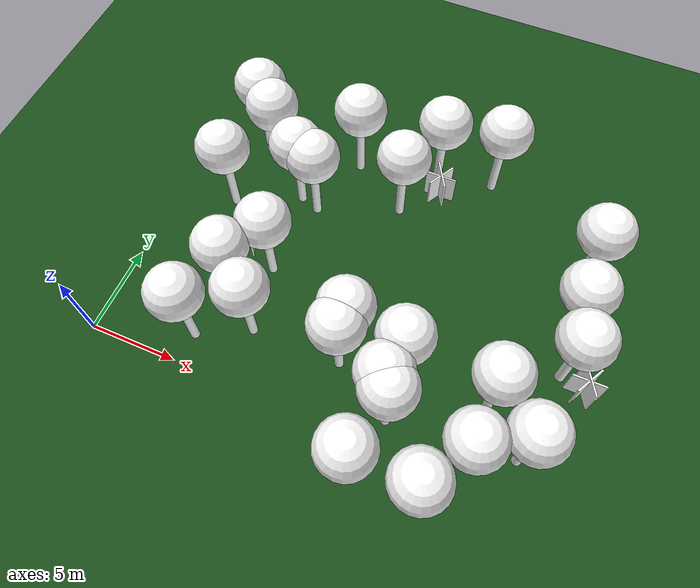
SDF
<sdf version="1.8">
 <world name="forest_world">
  <model name="fire_3">
   <pose>25.49 6.58 1.00 0 0 0.00</pose>
   <static>true</static>
   <link name="fire_link">
    <visual name="fire_3_fire_main_0">
     <geometry><box><size>1.80 0.10 2.00</size></box></geometry>
     <material>
      <ambient>0.7 0.35 0.0 1</ambient>
      <diffuse>1 1 1 1</diffuse>
      <specular>0 0 0 1</specular>
      <emissive>0 0 0 1</emissive>
      <pbr>
       <metal><albedo_map>textures/fire.png</albedo_map><metalness>0.0</metalness><roughness>0.6</roughness></metal>
      </pbr>
     </material>
     <transparency>0.0</transparency>
     <cast_shadows>false</cast_shadows>
    </visual>
    <visual name="fire_3_fire_60_1">
     <pose>0.00 0.00 0.10 0 0 1.05</pose>
     <geometry><box><size>1.80 0.10 2.00</size></box></geometry>
     <material>
      <ambient>0.7 0.35 0.0 1</ambient>
      <diffuse>1 1 1 1</diffuse>
      <specular>0 0 0 1</specular>
      <emissive>0 0 0 1</emissive>
      <pbr>
       <metal><albedo_map>textures/fire.png</albedo_map><metalness>0.0</metalness><roughness>0.6</roughness></metal>
      </pbr>
     </material>
     <transparency>0.0</transparency>
     <cast_shadows>false</cast_shadows>
    </visual>
    <visual name="fire_3_fire_120_2">
     <pose>0.00 0.00 0.20 0 0 2.09</pose>
     <geometry><box><size>1.80 0.10 2.00</size></box></geometry>
     <material>
      <ambient>0.7 0.35 0.0 1</ambient>
      <diffuse>1 1 1 1</diffuse>
      <specular>0 0 0 1</specular>
      <emissive>0 0 0 1</emissive>
      <pbr>
       <metal><albedo_map>textures/fire.png</albedo_map><metalness>0.0</metalness><roughness>0.6</roughness></metal>
      </pbr>
     </material>
     <transparency>0.0</transparency>
     <cast_shadows>false</cast_shadows>
    </visual>
    <light type="point" name="fire_3_light_0">
     <pose>0.40 0.00 0.50 0 0 0</pose>
     <diffuse>1.0 0.7 0.3 1</diffuse>
     <specular>1.0 0.8 0.3 1</specular>
     <intensity>2</intensity>
     <attenuation>
      <range>2</range>
      <constant>0.1</constant>
      <linear>0.05</linear>
      <quadratic>0.02</quadratic>
     </attenuation>
     <cast_shadows>false</cast_shadows>
    </light>
    <light type="point" name="fire_3_light_1">
     <pose>-0.20 0.35 0.50 0 0 0</pose>
     <diffuse>1.0 0.7 0.3 1</diffuse>
     <specular>1.0 0.8 0.3 1</specular>
     <intensity>2</intensity>
     <attenuation>
      <range>2</range>
      <constant>0.1</constant>
      <linear>0.05</linear>
      <quadratic>0.02</quadratic>
     </attenuation>
     <cast_shadows>false</cast_shadows>
    </light>
    <light type="point" name="fire_3_light_2">
     <pose>-0.20 -0.35 0.50 0 0 0</pose>
     <diffuse>1.0 0.7 0.3 1</diffuse>
     <specular>1.0 0.8 0.3 1</specular>
     <intensity>2</intensity>
     <attenuation>
      <range>2</range>
      <constant>0.1</constant>
      <linear>0.05</linear>
      <quadratic>0.02</quadratic>
     </attenuation>
     <cast_shadows>false</cast_shadows>
    </light>
   </link>
   <plugin filename="libignition-gazebo-pose-publisher-system.so" name="ignition::gazebo::systems::PosePublisher">
    <frame_id>world</frame_id>
    <publish_link_pose>true</publish_link_pose>
    <use_pose_vector_msg>true</use_pose_vector_msg>
    <static_publisher>true</static_publisher>
    <static_update_frequency>1</static_update_frequency>
   </plugin>
  </model>
  <model name="fire_24">
   <pose>5.73 8.03 1.00 0 0 0.00</pose>
   <static>true</static>
   <link name="fire_link">
    <visual name="fire_24_fire_main_0">
     <geometry><box><size>1.80 0.10 2.00</size></box></geometry>
     <material>
      <ambient>0.7 0.35 0.0 1</ambient>
      <diffuse>1 1 1 1</diffuse>
      <specular>0 0 0 1</specular>
      <emissive>0 0 0 1</emissive>
      <pbr>
       <metal><albedo_map>textures/fire.png</albedo_map><metalness>0.0</metalness><roughness>0.6</roughness></metal>
      </pbr>
     </material>
     <transparency>0.0</transparency>
     <cast_shadows>false</cast_shadows>
    </visual>
    <visual name="fire_24_fire_60_1">
     <pose>0.00 0.00 0.10 0 0 1.05</pose>
     <geometry><box><size>1.80 0.10 2.00</size></box></geometry>
     <material>
      <ambient>0.7 0.35 0.0 1</ambient>
      <diffuse>1 1 1 1</diffuse>
      <specular>0 0 0 1</specular>
      <emissive>0 0 0 1</emissive>
      <pbr>
       <metal><albedo_map>textures/fire.png</albedo_map><metalness>0.0</metalness><roughness>0.6</roughness></metal>
      </pbr>
     </material>
     <transparency>0.0</transparency>
     <cast_shadows>false</cast_shadows>
    </visual>
    <visual name="fire_24_fire_120_2">
     <pose>0.00 0.00 0.20 0 0 2.09</pose>
     <geometry><box><size>1.80 0.10 2.00</size></box></geometry>
     <material>
      <ambient>0.7 0.35 0.0 1</ambient>
      <diffuse>1 1 1 1</diffuse>
      <specular>0 0 0 1</specular>
      <emissive>0 0 0 1</emissive>
      <pbr>
       <metal><albedo_map>textures/fire.png</albedo_map><metalness>0.0</metalness><roughness>0.6</roughness></metal>
      </pbr>
     </material>
     <transparency>0.0</transparency>
     <cast_shadows>false</cast_shadows>
    </visual>
    <light type="point" name="fire_24_light_0">
     <pose>0.40 0.00 0.50 0 0 0</pose>
     <diffuse>1.0 0.7 0.3 1</diffuse>
     <specular>1.0 0.8 0.3 1</specular>
     <intensity>2</intensity>
     <attenuation>
      <range>2</range>
      <constant>0.1</constant>
      <linear>0.05</linear>
      <quadratic>0.02</quadratic>
     </attenuation>
     <cast_shadows>false</cast_shadows>
    </light>
    <light type="point" name="fire_24_light_1">
     <pose>-0.20 0.35 0.50 0 0 0</pose>
     <diffuse>1.0 0.7 0.3 1</diffuse>
     <specular>1.0 0.8 0.3 1</specular>
     <intensity>2</intensity>
     <attenuation>
      <range>2</range>
      <constant>0.1</constant>
      <linear>0.05</linear>
      <quadratic>0.02</quadratic>
     </attenuation>
     <cast_shadows>false</cast_shadows>
    </light>
    <light type="point" name="fire_24_light_2">
     <pose>-0.20 -0.35 0.50 0 0 0</pose>
     <diffuse>1.0 0.7 0.3 1</diffuse>
     <specular>1.0 0.8 0.3 1</specular>
     <intensity>2</intensity>
     <attenuation>
      <range>2</range>
      <constant>0.1</constant>
      <linear>0.05</linear>
      <quadratic>0.02</quadratic>
     </attenuation>
     <cast_shadows>false</cast_shadows>
    </light>
   </link>
   <plugin filename="libignition-gazebo-pose-publisher-system.so" name="ignition::gazebo::systems::PosePublisher">
    <frame_id>world</frame_id>
    <publish_link_pose>true</publish_link_pose>
    <use_pose_vector_msg>true</use_pose_vector_msg>
    <static_publisher>true</static_publisher>
    <static_update_frequency>1</static_update_frequency>
   </plugin>
  </model>
  <model name="fire_35">
   <pose>14.52 15.46 1.00 0 0 0.00</pose>
   <static>true</static>
   <link name="fire_link">
    <visual name="fire_35_fire_main_0">
     <geometry><box><size>1.80 0.10 2.00</size></box></geometry>
     <material>
      <ambient>0.7 0.35 0.0 1</ambient>
      <diffuse>1 1 1 1</diffuse>
      <specular>0 0 0 1</specular>
      <emissive>0 0 0 1</emissive>
      <pbr>
       <metal><albedo_map>textures/fire.png</albedo_map><metalness>0.0</metalness><roughness>0.6</roughness></metal>
      </pbr>
     </material>
     <transparency>0.0</transparency>
     <cast_shadows>false</cast_shadows>
    </visual>
    <visual name="fire_35_fire_60_1">
     <pose>0.00 0.00 0.10 0 0 1.05</pose>
     <geometry><box><size>1.80 0.10 2.00</size></box></geometry>
     <material>
      <ambient>0.7 0.35 0.0 1</ambient>
      <diffuse>1 1 1 1</diffuse>
      <specular>0 0 0 1</specular>
      <emissive>0 0 0 1</emissive>
      <pbr>
       <metal><albedo_map>textures/fire.png</albedo_map><metalness>0.0</metalness><roughness>0.6</roughness></metal>
      </pbr>
     </material>
     <transparency>0.0</transparency>
     <cast_shadows>false</cast_shadows>
    </visual>
    <visual name="fire_35_fire_120_2">
     <pose>0.00 0.00 0.20 0 0 2.09</pose>
     <geometry><box><size>1.80 0.10 2.00</size></box></geometry>
     <material>
      <ambient>0.7 0.35 0.0 1</ambient>
      <diffuse>1 1 1 1</diffuse>
      <specular>0 0 0 1</specular>
      <emissive>0 0 0 1</emissive>
      <pbr>
       <metal><albedo_map>textures/fire.png</albedo_map><metalness>0.0</metalness><roughness>0.6</roughness></metal>
      </pbr>
     </material>
     <transparency>0.0</transparency>
     <cast_shadows>false</cast_shadows>
    </visual>
    <light type="point" name="fire_35_light_0">
     <pose>0.40 0.00 0.50 0 0 0</pose>
     <diffuse>1.0 0.7 0.3 1</diffuse>
     <specular>1.0 0.8 0.3 1</specular>
     <intensity>2</intensity>
     <attenuation>
      <range>2</range>
      <constant>0.1</constant>
      <linear>0.05</linear>
      <quadratic>0.02</quadratic>
     </attenuation>
     <cast_shadows>false</cast_shadows>
    </light>
    <light type="point" name="fire_35_light_1">
     <pose>-0.20 0.35 0.50 0 0 0</pose>
     <diffuse>1.0 0.7 0.3 1</diffuse>
     <specular>1.0 0.8 0.3 1</specular>
     <intensity>2</intensity>
     <attenuation>
      <range>2</range>
      <constant>0.1</constant>
      <linear>0.05</linear>
      <quadratic>0.02</quadratic>
     </attenuation>
     <cast_shadows>false</cast_shadows>
    </light>
    <light type="point" name="fire_35_light_2">
     <pose>-0.20 -0.35 0.50 0 0 0</pose>
     <diffuse>1.0 0.7 0.3 1</diffuse>
     <specular>1.0 0.8 0.3 1</specular>
     <intensity>2</intensity>
     <attenuation>
      <range>2</range>
      <constant>0.1</constant>
      <linear>0.05</linear>
      <quadratic>0.02</quadratic>
     </attenuation>
     <cast_shadows>false</cast_shadows>
    </light>
   </link>
   <plugin filename="libignition-gazebo-pose-publisher-system.so" name="ignition::gazebo::systems::PosePublisher">
    <frame_id>world</frame_id>
    <publish_link_pose>true</publish_link_pose>
    <use_pose_vector_msg>true</use_pose_vector_msg>
    <static_publisher>true</static_publisher>
    <static_update_frequency>1</static_update_frequency>
   </plugin>
  </model>
  <model name="tree_simple495">
   <static>1</static>
   <link name="link">
    <pose>0 0 0.1 0 -0 0</pose>
    <collision name="collision_trunk">
     <pose>0 0 2 0 -0 0</pose>
     <geometry><cylinder><radius>0.25</radius><length>4</length></cylinder></geometry>
    </collision>
    <collision name="collision_treetop">
     <pose>0 0 5.2 0 -0 0</pose>
     <geometry><sphere><radius>1.5</radius></sphere></geometry>
    </collision>
    <visual name="trunk">
     <pose>0 0 2 0 -0 0</pose>
     <geometry><cylinder><radius>0.25</radius><length>4</length></cylinder></geometry>
     <material>
      <ambient>0.5 0.5 0.5 1</ambient>
      <diffuse>1.0 1.0 1.0 1</diffuse>
      <specular>0.0 0.0 0.0 1</specular>
      <pbr>
       <metal>
        <albedo_map>../worlds/textures/tree_simple_trunk.jpg</albedo_map>
        <metalness>0.0</metalness>
        <roughness>0.8</roughness>
       </metal>
      </pbr>
     </material>
    </visual>
    <visual name="treetop">
     <pose>0 0 5.2 0 -0 0</pose>
     <geometry><sphere><radius>1.5</radius></sphere></geometry>
     <material>
      <ambient>0.5 0.5 0.5 1</ambient>
      <diffuse>1.0 1.0 1.0 1</diffuse>
      <specular>0.0 0.0 0.0 1</specular>
      <pbr>
       <metal>
        <albedo_map>../worlds/textures/tree_simple_treetop.jpg</albedo_map>
        <metalness>0.0</metalness>
        <roughness>0.9</roughness>
       </metal>
      </pbr>
     </material>
    </visual>
   </link>
   <pose>13.2663357304 3.23501246435 0 0 -0 0</pose>
  </model>
  <model name="tree_simple486">
   <static>1</static>
   <link name="link">
    <pose>0 0 0.1 0 -0 0</pose>
    <collision name="collision_trunk">
     <pose>0 0 2 0 -0 0</pose>
     <geometry><cylinder><radius>0.25</radius><length>4</length></cylinder></geometry>
    </collision>
    <collision name="collision_treetop">
     <pose>0 0 5.2 0 -0 0</pose>
     <geometry><sphere><radius>1.5</radius></sphere></geometry>
    </collision>
    <visual name="trunk">
     <pose>0 0 2 0 -0 0</pose>
     <geometry><cylinder><radius>0.25</radius><length>4</length></cylinder></geometry>
     <material>
      <ambient>0.5 0.5 0.5 1</ambient>
      <diffuse>1.0 1.0 1.0 1</diffuse>
      <specular>0.0 0.0 0.0 1</specular>
      <pbr>
       <metal>
        <albedo_map>../worlds/textures/tree_simple_trunk.jpg</albedo_map>
        <metalness>0.0</metalness>
        <roughness>0.8</roughness>
       </metal>
      </pbr>
     </material>
    </visual>
    <visual name="treetop">
     <pose>0 0 5.2 0 -0 0</pose>
     <geometry><sphere><radius>1.5</radius></sphere></geometry>
     <material>
      <ambient>0.5 0.5 0.5 1</ambient>
      <diffuse>1.0 1.0 1.0 1</diffuse>
      <specular>0.0 0.0 0.0 1</specular>
      <pbr>
       <metal>
        <albedo_map>../worlds/textures/tree_simple_treetop.jpg</albedo_map>
        <metalness>0.0</metalness>
        <roughness>0.9</roughness>
       </metal>
      </pbr>
     </material>
    </visual>
   </link>
   <pose>8.18281559396 11.6524151823 0 0 -0 0</pose>
  </model>
  <model name="tree_simple431">
   <static>1</static>
   <link name="link">
    <pose>0 0 0.1 0 -0 0</pose>
    <collision name="collision_trunk">
     <pose>0 0 2 0 -0 0</pose>
     <geometry><cylinder><radius>0.25</radius><length>4</length></cylinder></geometry>
    </collision>
    <collision name="collision_treetop">
     <pose>0 0 5.2 0 -0 0</pose>
     <geometry><sphere><radius>1.5</radius></sphere></geometry>
    </collision>
    <visual name="trunk">
     <pose>0 0 2 0 -0 0</pose>
     <geometry><cylinder><radius>0.25</radius><length>4</length></cylinder></geometry>
     <material>
      <ambient>0.5 0.5 0.5 1</ambient>
      <diffuse>1.0 1.0 1.0 1</diffuse>
      <specular>0.0 0.0 0.0 1</specular>
      <pbr>
       <metal>
        <albedo_map>../worlds/textures/tree_simple_trunk.jpg</albedo_map>
        <metalness>0.0</metalness>
        <roughness>0.8</roughness>
       </metal>
      </pbr>
     </material>
    </visual>
    <visual name="treetop">
     <pose>0 0 5.2 0 -0 0</pose>
     <geometry><sphere><radius>1.5</radius></sphere></geometry>
     <material>
      <ambient>0.5 0.5 0.5 1</ambient>
      <diffuse>1.0 1.0 1.0 1</diffuse>
      <specular>0.0 0.0 0.0 1</specular>
      <pbr>
       <metal>
        <albedo_map>../worlds/textures/tree_simple_treetop.jpg</albedo_map>
        <metalness>0.0</metalness>
        <roughness>0.9</roughness>
       </metal>
      </pbr>
     </material>
    </visual>
   </link>
   <pose>21.2091972338 3.93897030512 0 0 -0 0</pose>
  </model>
  <model name="tree_simple421">
   <static>1</static>
   <link name="link">
    <pose>0 0 0.1 0 -0 0</pose>
    <collision name="collision_trunk">
     <pose>0 0 2 0 -0 0</pose>
     <geometry><cylinder><radius>0.25</radius><length>4</length></cylinder></geometry>
    </collision>
    <collision name="collision_treetop">
     <pose>0 0 5.2 0 -0 0</pose>
     <geometry><sphere><radius>1.5</radius></sphere></geometry>
    </collision>
    <visual name="trunk">
     <pose>0 0 2 0 -0 0</pose>
     <geometry><cylinder><radius>0.25</radius><length>4</length></cylinder></geometry>
     <material>
      <ambient>0.5 0.5 0.5 1</ambient>
      <diffuse>1.0 1.0 1.0 1</diffuse>
      <specular>0.0 0.0 0.0 1</specular>
      <pbr>
       <metal>
        <albedo_map>../worlds/textures/tree_simple_trunk.jpg</albedo_map>
        <metalness>0.0</metalness>
        <roughness>0.8</roughness>
       </metal>
      </pbr>
     </material>
    </visual>
    <visual name="treetop">
     <pose>0 0 5.2 0 -0 0</pose>
     <geometry><sphere><radius>1.5</radius></sphere></geometry>
     <material>
      <ambient>0.5 0.5 0.5 1</ambient>
      <diffuse>1.0 1.0 1.0 1</diffuse>
      <specular>0.0 0.0 0.0 1</specular>
      <pbr>
       <metal>
        <albedo_map>../worlds/textures/tree_simple_treetop.jpg</albedo_map>
        <metalness>0.0</metalness>
        <roughness>0.9</roughness>
       </metal>
      </pbr>
     </material>
    </visual>
   </link>
   <pose>7.02492588621 12.0559728025 0 0 -0 0</pose>
  </model>
  <model name="tree_simple350">
   <static>1</static>
   <link name="link">
    <pose>0 0 0.1 0 -0 0</pose>
    <collision name="collision_trunk">
     <pose>0 0 2 0 -0 0</pose>
     <geometry><cylinder><radius>0.25</radius><length>4</length></cylinder></geometry>
    </collision>
    <collision name="collision_treetop">
     <pose>0 0 5.2 0 -0 0</pose>
     <geometry><sphere><radius>1.5</radius></sphere></geometry>
    </collision>
    <visual name="trunk">
     <pose>0 0 2 0 -0 0</pose>
     <geometry><cylinder><radius>0.25</radius><length>4</length></cylinder></geometry>
     <material>
      <ambient>0.5 0.5 0.5 1</ambient>
      <diffuse>1.0 1.0 1.0 1</diffuse>
      <specular>0.0 0.0 0.0 1</specular>
      <pbr>
       <metal>
        <albedo_map>../worlds/textures/tree_simple_trunk.jpg</albedo_map>
        <metalness>0.0</metalness>
        <roughness>0.8</roughness>
       </metal>
      </pbr>
     </material>
    </visual>
    <visual name="treetop">
     <pose>0 0 5.2 0 -0 0</pose>
     <geometry><sphere><radius>1.5</radius></sphere></geometry>
     <material>
      <ambient>0.5 0.5 0.5 1</ambient>
      <diffuse>1.0 1.0 1.0 1</diffuse>
      <specular>0.0 0.0 0.0 1</specular>
      <pbr>
       <metal>
        <albedo_map>../worlds/textures/tree_simple_treetop.jpg</albedo_map>
        <metalness>0.0</metalness>
        <roughness>0.9</roughness>
       </metal>
      </pbr>
     </material>
    </visual>
   </link>
   <pose>5.40258361507 1.7380066323 0 0 -0 0</pose>
  </model>
  <model name="tree_simple346">
   <static>1</static>
   <link name="link">
    <pose>0 0 0.1 0 -0 0</pose>
    <collision name="collision_trunk">
     <pose>0 0 2 0 -0 0</pose>
     <geometry><cylinder><radius>0.25</radius><length>4</length></cylinder></geometry>
    </collision>
    <collision name="collision_treetop">
     <pose>0 0 5.2 0 -0 0</pose>
     <geometry><sphere><radius>1.5</radius></sphere></geometry>
    </collision>
    <visual name="trunk">
     <pose>0 0 2 0 -0 0</pose>
     <geometry><cylinder><radius>0.25</radius><length>4</length></cylinder></geometry>
     <material>
      <ambient>0.5 0.5 0.5 1</ambient>
      <diffuse>1.0 1.0 1.0 1</diffuse>
      <specular>0.0 0.0 0.0 1</specular>
      <pbr>
       <metal>
        <albedo_map>../worlds/textures/tree_simple_trunk.jpg</albedo_map>
        <metalness>0.0</metalness>
        <roughness>0.8</roughness>
       </metal>
      </pbr>
     </material>
    </visual>
    <visual name="treetop">
     <pose>0 0 5.2 0 -0 0</pose>
     <geometry><sphere><radius>1.5</radius></sphere></geometry>
     <material>
      <ambient>0.5 0.5 0.5 1</ambient>
      <diffuse>1.0 1.0 1.0 1</diffuse>
      <specular>0.0 0.0 0.0 1</specular>
      <pbr>
       <metal>
        <albedo_map>../worlds/textures/tree_simple_treetop.jpg</albedo_map>
        <metalness>0.0</metalness>
        <roughness>0.9</roughness>
       </metal>
      </pbr>
     </material>
    </visual>
   </link>
   <pose>6.18558583868 4.91340003373 0 0 -0 0</pose>
  </model>
  <model name="tree_simple316">
   <static>1</static>
   <link name="link">
    <pose>0 0 0.1 0 -0 0</pose>
    <collision name="collision_trunk">
     <pose>0 0 2 0 -0 0</pose>
     <geometry><cylinder><radius>0.25</radius><length>4</length></cylinder></geometry>
    </collision>
    <collision name="collision_treetop">
     <pose>0 0 5.2 0 -0 0</pose>
     <geometry><sphere><radius>1.5</radius></sphere></geometry>
    </collision>
    <visual name="trunk">
     <pose>0 0 2 0 -0 0</pose>
     <geometry><cylinder><radius>0.25</radius><length>4</length></cylinder></geometry>
     <material>
      <ambient>0.5 0.5 0.5 1</ambient>
      <diffuse>1.0 1.0 1.0 1</diffuse>
      <specular>0.0 0.0 0.0 1</specular>
      <pbr>
       <metal>
        <albedo_map>../worlds/textures/tree_simple_trunk.jpg</albedo_map>
        <metalness>0.0</metalness>
        <roughness>0.8</roughness>
       </metal>
      </pbr>
     </material>
    </visual>
    <visual name="treetop">
     <pose>0 0 5.2 0 -0 0</pose>
     <geometry><sphere><radius>1.5</radius></sphere></geometry>
     <material>
      <ambient>0.5 0.5 0.5 1</ambient>
      <diffuse>1.0 1.0 1.0 1</diffuse>
      <specular>0.0 0.0 0.0 1</specular>
      <pbr>
       <metal>
        <albedo_map>../worlds/textures/tree_simple_treetop.jpg</albedo_map>
        <metalness>0.0</metalness>
        <roughness>0.9</roughness>
       </metal>
      </pbr>
     </material>
    </visual>
   </link>
   <pose>19.3529599153 -1.91242662106 0 0 -0 0</pose>
  </model>
  <model name="tree_simple315">
   <static>1</static>
   <link name="link">
    <pose>0 0 0.1 0 -0 0</pose>
    <collision name="collision_trunk">
     <pose>0 0 2 0 -0 0</pose>
     <geometry><cylinder><radius>0.25</radius><length>4</length></cylinder></geometry>
    </collision>
    <collision name="collision_treetop">
     <pose>0 0 5.2 0 -0 0</pose>
     <geometry><sphere><radius>1.5</radius></sphere></geometry>
    </collision>
    <visual name="trunk">
     <pose>0 0 2 0 -0 0</pose>
     <geometry><cylinder><radius>0.25</radius><length>4</length></cylinder></geometry>
     <material>
      <ambient>0.5 0.5 0.5 1</ambient>
      <diffuse>1.0 1.0 1.0 1</diffuse>
      <specular>0.0 0.0 0.0 1</specular>
      <pbr>
       <metal>
        <albedo_map>../worlds/textures/tree_simple_trunk.jpg</albedo_map>
        <metalness>0.0</metalness>
        <roughness>0.8</roughness>
       </metal>
      </pbr>
     </material>
    </visual>
    <visual name="treetop">
     <pose>0 0 5.2 0 -0 0</pose>
     <geometry><sphere><radius>1.5</radius></sphere></geometry>
     <material>
      <ambient>0.5 0.5 0.5 1</ambient>
      <diffuse>1.0 1.0 1.0 1</diffuse>
      <specular>0.0 0.0 0.0 1</specular>
      <pbr>
       <metal>
        <albedo_map>../worlds/textures/tree_simple_treetop.jpg</albedo_map>
        <metalness>0.0</metalness>
        <roughness>0.9</roughness>
       </metal>
      </pbr>
     </material>
    </visual>
   </link>
   <pose>20.9855205965 0.626463942169 0 0 -0 0</pose>
  </model>
  <model name="tree_simple314">
   <static>1</static>
   <link name="link">
    <pose>0 0 0.1 0 -0 0</pose>
    <collision name="collision_trunk">
     <pose>0 0 2 0 -0 0</pose>
     <geometry><cylinder><radius>0.25</radius><length>4</length></cylinder></geometry>
    </collision>
    <collision name="collision_treetop">
     <pose>0 0 5.2 0 -0 0</pose>
     <geometry><sphere><radius>1.5</radius></sphere></geometry>
    </collision>
    <visual name="trunk">
     <pose>0 0 2 0 -0 0</pose>
     <geometry><cylinder><radius>0.25</radius><length>4</length></cylinder></geometry>
     <material>
      <ambient>0.5 0.5 0.5 1</ambient>
      <diffuse>1.0 1.0 1.0 1</diffuse>
      <specular>0.0 0.0 0.0 1</specular>
      <pbr>
       <metal>
        <albedo_map>../worlds/textures/tree_simple_trunk.jpg</albedo_map>
        <metalness>0.0</metalness>
        <roughness>0.8</roughness>
       </metal>
      </pbr>
     </material>
    </visual>
    <visual name="treetop">
     <pose>0 0 5.2 0 -0 0</pose>
     <geometry><sphere><radius>1.5</radius></sphere></geometry>
     <material>
      <ambient>0.5 0.5 0.5 1</ambient>
      <diffuse>1.0 1.0 1.0 1</diffuse>
      <specular>0.0 0.0 0.0 1</specular>
      <pbr>
       <metal>
        <albedo_map>../worlds/textures/tree_simple_treetop.jpg</albedo_map>
        <metalness>0.0</metalness>
        <roughness>0.9</roughness>
       </metal>
      </pbr>
     </material>
    </visual>
   </link>
   <pose>15.9305866253 -1.88175491407 0 0 -0 0</pose>
  </model>
  <model name="tree_simple304">
   <static>1</static>
   <link name="link">
    <pose>0 0 0.1 0 -0 0</pose>
    <collision name="collision_trunk">
     <pose>0 0 2 0 -0 0</pose>
     <geometry><cylinder><radius>0.25</radius><length>4</length></cylinder></geometry>
    </collision>
    <collision name="collision_treetop">
     <pose>0 0 5.2 0 -0 0</pose>
     <geometry><sphere><radius>1.5</radius></sphere></geometry>
    </collision>
    <visual name="trunk">
     <pose>0 0 2 0 -0 0</pose>
     <geometry><cylinder><radius>0.25</radius><length>4</length></cylinder></geometry>
     <material>
      <ambient>0.5 0.5 0.5 1</ambient>
      <diffuse>1.0 1.0 1.0 1</diffuse>
      <specular>0.0 0.0 0.0 1</specular>
      <pbr>
       <metal>
        <albedo_map>../worlds/textures/tree_simple_trunk.jpg</albedo_map>
        <metalness>0.0</metalness>
        <roughness>0.8</roughness>
       </metal>
      </pbr>
     </material>
    </visual>
    <visual name="treetop">
     <pose>0 0 5.2 0 -0 0</pose>
     <geometry><sphere><radius>1.5</radius></sphere></geometry>
     <material>
      <ambient>0.5 0.5 0.5 1</ambient>
      <diffuse>1.0 1.0 1.0 1</diffuse>
      <specular>0.0 0.0 0.0 1</specular>
      <pbr>
       <metal>
        <albedo_map>../worlds/textures/tree_simple_treetop.jpg</albedo_map>
        <metalness>0.0</metalness>
        <roughness>0.9</roughness>
       </metal>
      </pbr>
     </material>
    </visual>
   </link>
   <pose>12.7492321523 13.4736505169 0 0 -0 0</pose>
  </model>
  <model name="tree_simple293">
   <static>1</static>
   <link name="link">
    <pose>0 0 0.1 0 -0 0</pose>
    <collision name="collision_trunk">
     <pose>0 0 2 0 -0 0</pose>
     <geometry><cylinder><radius>0.25</radius><length>4</length></cylinder></geometry>
    </collision>
    <collision name="collision_treetop">
     <pose>0 0 5.2 0 -0 0</pose>
     <geometry><sphere><radius>1.5</radius></sphere></geometry>
    </collision>
    <visual name="trunk">
     <pose>0 0 2 0 -0 0</pose>
     <geometry><cylinder><radius>0.25</radius><length>4</length></cylinder></geometry>
     <material>
      <ambient>0.5 0.5 0.5 1</ambient>
      <diffuse>1.0 1.0 1.0 1</diffuse>
      <specular>0.0 0.0 0.0 1</specular>
      <pbr>
       <metal>
        <albedo_map>../worlds/textures/tree_simple_trunk.jpg</albedo_map>
        <metalness>0.0</metalness>
        <roughness>0.8</roughness>
       </metal>
      </pbr>
     </material>
    </visual>
    <visual name="treetop">
     <pose>0 0 5.2 0 -0 0</pose>
     <geometry><sphere><radius>1.5</radius></sphere></geometry>
     <material>
      <ambient>0.5 0.5 0.5 1</ambient>
      <diffuse>1.0 1.0 1.0 1</diffuse>
      <specular>0.0 0.0 0.0 1</specular>
      <pbr>
       <metal>
        <albedo_map>../worlds/textures/tree_simple_treetop.jpg</albedo_map>
        <metalness>0.0</metalness>
        <roughness>0.9</roughness>
       </metal>
      </pbr>
     </material>
    </visual>
   </link>
   <pose>23.4063524119 1.93979754522 0 0 -0 0</pose>
  </model>
  <model name="tree_simple269">
   <static>1</static>
   <link name="link">
    <pose>0 0 0.1 0 -0 0</pose>
    <collision name="collision_trunk">
     <pose>0 0 2 0 -0 0</pose>
     <geometry><cylinder><radius>0.25</radius><length>4</length></cylinder></geometry>
    </collision>
    <collision name="collision_treetop">
     <pose>0 0 5.2 0 -0 0</pose>
     <geometry><sphere><radius>1.5</radius></sphere></geometry>
    </collision>
    <visual name="trunk">
     <pose>0 0 2 0 -0 0</pose>
     <geometry><cylinder><radius>0.25</radius><length>4</length></cylinder></geometry>
     <material>
      <ambient>0.5 0.5 0.5 1</ambient>
      <diffuse>1.0 1.0 1.0 1</diffuse>
      <specular>0.0 0.0 0.0 1</specular>
      <pbr>
       <metal>
        <albedo_map>../worlds/textures/tree_simple_trunk.jpg</albedo_map>
        <metalness>0.0</metalness>
        <roughness>0.8</roughness>
       </metal>
      </pbr>
     </material>
    </visual>
    <visual name="treetop">
     <pose>0 0 5.2 0 -0 0</pose>
     <geometry><sphere><radius>1.5</radius></sphere></geometry>
     <material>
      <ambient>0.5 0.5 0.5 1</ambient>
      <diffuse>1.0 1.0 1.0 1</diffuse>
      <specular>0.0 0.0 0.0 1</specular>
      <pbr>
       <metal>
        <albedo_map>../worlds/textures/tree_simple_treetop.jpg</albedo_map>
        <metalness>0.0</metalness>
        <roughness>0.9</roughness>
       </metal>
      </pbr>
     </material>
    </visual>
   </link>
   <pose>3.4316618278 10.3418603378 0 0 -0 0</pose>
  </model>
  <model name="tree_simple246">
   <static>1</static>
   <link name="link">
    <pose>0 0 0.1 0 -0 0</pose>
    <collision name="collision_trunk">
     <pose>0 0 2 0 -0 0</pose>
     <geometry><cylinder><radius>0.25</radius><length>4</length></cylinder></geometry>
    </collision>
    <collision name="collision_treetop">
     <pose>0 0 5.2 0 -0 0</pose>
     <geometry><sphere><radius>1.5</radius></sphere></geometry>
    </collision>
    <visual name="trunk">
     <pose>0 0 2 0 -0 0</pose>
     <geometry><cylinder><radius>0.25</radius><length>4</length></cylinder></geometry>
     <material>
      <ambient>0.5 0.5 0.5 1</ambient>
      <diffuse>1.0 1.0 1.0 1</diffuse>
      <specular>0.0 0.0 0.0 1</specular>
      <pbr>
       <metal>
        <albedo_map>../worlds/textures/tree_simple_trunk.jpg</albedo_map>
        <metalness>0.0</metalness>
        <roughness>0.8</roughness>
       </metal>
      </pbr>
     </material>
    </visual>
    <visual name="treetop">
     <pose>0 0 5.2 0 -0 0</pose>
     <geometry><sphere><radius>1.5</radius></sphere></geometry>
     <material>
      <ambient>0.5 0.5 0.5 1</ambient>
      <diffuse>1.0 1.0 1.0 1</diffuse>
      <specular>0.0 0.0 0.0 1</specular>
      <pbr>
       <metal>
        <albedo_map>../worlds/textures/tree_simple_treetop.jpg</albedo_map>
        <metalness>0.0</metalness>
        <roughness>0.9</roughness>
       </metal>
      </pbr>
     </material>
    </visual>
   </link>
   <pose>4.59531277399 14.0377896265 0 0 -0 0</pose>
  </model>
  <model name="tree_simple242">
   <static>1</static>
   <link name="link">
    <pose>0 0 0.1 0 -0 0</pose>
    <collision name="collision_trunk">
     <pose>0 0 2 0 -0 0</pose>
     <geometry><cylinder><radius>0.25</radius><length>4</length></cylinder></geometry>
    </collision>
    <collision name="collision_treetop">
     <pose>0 0 5.2 0 -0 0</pose>
     <geometry><sphere><radius>1.5</radius></sphere></geometry>
    </collision>
    <visual name="trunk">
     <pose>0 0 2 0 -0 0</pose>
     <geometry><cylinder><radius>0.25</radius><length>4</length></cylinder></geometry>
     <material>
      <ambient>0.5 0.5 0.5 1</ambient>
      <diffuse>1.0 1.0 1.0 1</diffuse>
      <specular>0.0 0.0 0.0 1</specular>
      <pbr>
       <metal>
        <albedo_map>../worlds/textures/tree_simple_trunk.jpg</albedo_map>
        <metalness>0.0</metalness>
        <roughness>0.8</roughness>
       </metal>
      </pbr>
     </material>
    </visual>
    <visual name="treetop">
     <pose>0 0 5.2 0 -0 0</pose>
     <geometry><sphere><radius>1.5</radius></sphere></geometry>
     <material>
      <ambient>0.5 0.5 0.5 1</ambient>
      <diffuse>1.0 1.0 1.0 1</diffuse>
      <specular>0.0 0.0 0.0 1</specular>
      <pbr>
       <metal>
        <albedo_map>../worlds/textures/tree_simple_treetop.jpg</albedo_map>
        <metalness>0.0</metalness>
        <roughness>0.9</roughness>
       </metal>
      </pbr>
     </material>
    </visual>
   </link>
   <pose>23.8093795921 9.61974989159 0 0 -0 0</pose>
  </model>
  <model name="tree_simple237">
   <static>1</static>
   <link name="link">
    <pose>0 0 0.1 0 -0 0</pose>
    <collision name="collision_trunk">
     <pose>0 0 2 0 -0 0</pose>
     <geometry><cylinder><radius>0.25</radius><length>4</length></cylinder></geometry>
    </collision>
    <collision name="collision_treetop">
     <pose>0 0 5.2 0 -0 0</pose>
     <geometry><sphere><radius>1.5</radius></sphere></geometry>
    </collision>
    <visual name="trunk">
     <pose>0 0 2 0 -0 0</pose>
     <geometry><cylinder><radius>0.25</radius><length>4</length></cylinder></geometry>
     <material>
      <ambient>0.5 0.5 0.5 1</ambient>
      <diffuse>1.0 1.0 1.0 1</diffuse>
      <specular>0.0 0.0 0.0 1</specular>
      <pbr>
       <metal>
        <albedo_map>../worlds/textures/tree_simple_trunk.jpg</albedo_map>
        <metalness>0.0</metalness>
        <roughness>0.8</roughness>
       </metal>
      </pbr>
     </material>
    </visual>
    <visual name="treetop">
     <pose>0 0 5.2 0 -0 0</pose>
     <geometry><sphere><radius>1.5</radius></sphere></geometry>
     <material>
      <ambient>0.5 0.5 0.5 1</ambient>
      <diffuse>1.0 1.0 1.0 1</diffuse>
      <specular>0.0 0.0 0.0 1</specular>
      <pbr>
       <metal>
        <albedo_map>../worlds/textures/tree_simple_treetop.jpg</albedo_map>
        <metalness>0.0</metalness>
        <roughness>0.9</roughness>
       </metal>
      </pbr>
     </material>
    </visual>
   </link>
   <pose>23.796461239 13.0760295483 0 0 -0 0</pose>
  </model>
  <model name="tree_simple214">
   <static>1</static>
   <link name="link">
    <pose>0 0 0.1 0 -0 0</pose>
    <collision name="collision_trunk">
     <pose>0 0 2 0 -0 0</pose>
     <geometry><cylinder><radius>0.25</radius><length>4</length></cylinder></geometry>
    </collision>
    <collision name="collision_treetop">
     <pose>0 0 5.2 0 -0 0</pose>
     <geometry><sphere><radius>1.5</radius></sphere></geometry>
    </collision>
    <visual name="trunk">
     <pose>0 0 2 0 -0 0</pose>
     <geometry><cylinder><radius>0.25</radius><length>4</length></cylinder></geometry>
     <material>
      <ambient>0.5 0.5 0.5 1</ambient>
      <diffuse>1.0 1.0 1.0 1</diffuse>
      <specular>0.0 0.0 0.0 1</specular>
      <pbr>
       <metal>
        <albedo_map>../worlds/textures/tree_simple_trunk.jpg</albedo_map>
        <metalness>0.0</metalness>
        <roughness>0.8</roughness>
       </metal>
      </pbr>
     </material>
    </visual>
    <visual name="treetop">
     <pose>0 0 5.2 0 -0 0</pose>
     <geometry><sphere><radius>1.5</radius></sphere></geometry>
     <material>
      <ambient>0.5 0.5 0.5 1</ambient>
      <diffuse>1.0 1.0 1.0 1</diffuse>
      <specular>0.0 0.0 0.0 1</specular>
      <pbr>
       <metal>
        <albedo_map>../worlds/textures/tree_simple_treetop.jpg</albedo_map>
        <metalness>0.0</metalness>
        <roughness>0.9</roughness>
       </metal>
      </pbr>
     </material>
    </visual>
   </link>
   <pose>16.4618787814 3.98227082292 0 0 -0 0</pose>
  </model>
  <model name="tree_simple160">
   <static>1</static>
   <link name="link">
    <pose>0 0 0.1 0 -0 0</pose>
    <collision name="collision_trunk">
     <pose>0 0 2 0 -0 0</pose>
     <geometry><cylinder><radius>0.25</radius><length>4</length></cylinder></geometry>
    </collision>
    <collision name="collision_treetop">
     <pose>0 0 5.2 0 -0 0</pose>
     <geometry><sphere><radius>1.5</radius></sphere></geometry>
    </collision>
    <visual name="trunk">
     <pose>0 0 2 0 -0 0</pose>
     <geometry><cylinder><radius>0.25</radius><length>4</length></cylinder></geometry>
     <material>
      <ambient>0.5 0.5 0.5 1</ambient>
      <diffuse>1.0 1.0 1.0 1</diffuse>
      <specular>0.0 0.0 0.0 1</specular>
      <pbr>
       <metal>
        <albedo_map>../worlds/textures/tree_simple_trunk.jpg</albedo_map>
        <metalness>0.0</metalness>
        <roughness>0.8</roughness>
       </metal>
      </pbr>
     </material>
    </visual>
    <visual name="treetop">
     <pose>0 0 5.2 0 -0 0</pose>
     <geometry><sphere><radius>1.5</radius></sphere></geometry>
     <material>
      <ambient>0.5 0.5 0.5 1</ambient>
      <diffuse>1.0 1.0 1.0 1</diffuse>
      <specular>0.0 0.0 0.0 1</specular>
      <pbr>
       <metal>
        <albedo_map>../worlds/textures/tree_simple_treetop.jpg</albedo_map>
        <metalness>0.0</metalness>
        <roughness>0.9</roughness>
       </metal>
      </pbr>
     </material>
    </visual>
   </link>
   <pose>3.31258380175 15.1525774981 0 0 -0 0</pose>
  </model>
  <model name="tree_simple145">
   <static>1</static>
   <link name="link">
    <pose>0 0 0.1 0 -0 0</pose>
    <collision name="collision_trunk">
     <pose>0 0 2 0 -0 0</pose>
     <geometry><cylinder><radius>0.25</radius><length>4</length></cylinder></geometry>
    </collision>
    <collision name="collision_treetop">
     <pose>0 0 5.2 0 -0 0</pose>
     <geometry><sphere><radius>1.5</radius></sphere></geometry>
    </collision>
    <visual name="trunk">
     <pose>0 0 2 0 -0 0</pose>
     <geometry><cylinder><radius>0.25</radius><length>4</length></cylinder></geometry>
     <material>
      <ambient>0.5 0.5 0.5 1</ambient>
      <diffuse>1.0 1.0 1.0 1</diffuse>
      <specular>0.0 0.0 0.0 1</specular>
      <pbr>
       <metal>
        <albedo_map>../worlds/textures/tree_simple_trunk.jpg</albedo_map>
        <metalness>0.0</metalness>
        <roughness>0.8</roughness>
       </metal>
      </pbr>
     </material>
    </visual>
    <visual name="treetop">
     <pose>0 0 5.2 0 -0 0</pose>
     <geometry><sphere><radius>1.5</radius></sphere></geometry>
     <material>
      <ambient>0.5 0.5 0.5 1</ambient>
      <diffuse>1.0 1.0 1.0 1</diffuse>
      <specular>0.0 0.0 0.0 1</specular>
      <pbr>
       <metal>
        <albedo_map>../worlds/textures/tree_simple_treetop.jpg</albedo_map>
        <metalness>0.0</metalness>
        <roughness>0.9</roughness>
       </metal>
      </pbr>
     </material>
    </visual>
   </link>
   <pose>7.53257093085 6.9864658102 0 0 -0 0</pose>
  </model>
  <model name="tree_simple98">
   <static>1</static>
   <link name="link">
    <pose>0 0 0.1 0 -0 0</pose>
    <collision name="collision_trunk">
     <pose>0 0 2 0 -0 0</pose>
     <geometry><cylinder><radius>0.25</radius><length>4</length></cylinder></geometry>
    </collision>
    <collision name="collision_treetop">
     <pose>0 0 5.2 0 -0 0</pose>
     <geometry><sphere><radius>1.5</radius></sphere></geometry>
    </collision>
    <visual name="trunk">
     <pose>0 0 2 0 -0 0</pose>
     <geometry><cylinder><radius>0.25</radius><length>4</length></cylinder></geometry>
     <material>
      <ambient>0.5 0.5 0.5 1</ambient>
      <diffuse>1.0 1.0 1.0 1</diffuse>
      <specular>0.0 0.0 0.0 1</specular>
      <pbr>
       <metal>
        <albedo_map>../worlds/textures/tree_simple_trunk.jpg</albedo_map>
        <metalness>0.0</metalness>
        <roughness>0.8</roughness>
       </metal>
      </pbr>
     </material>
    </visual>
    <visual name="treetop">
     <pose>0 0 5.2 0 -0 0</pose>
     <geometry><sphere><radius>1.5</radius></sphere></geometry>
     <material>
      <ambient>0.5 0.5 0.5 1</ambient>
      <diffuse>1.0 1.0 1.0 1</diffuse>
      <specular>0.0 0.0 0.0 1</specular>
      <pbr>
       <metal>
        <albedo_map>../worlds/textures/tree_simple_treetop.jpg</albedo_map>
        <metalness>0.0</metalness>
        <roughness>0.9</roughness>
       </metal>
      </pbr>
     </material>
    </visual>
   </link>
   <pose>14.024693035 16.5700471203 0 0 -0 0</pose>
  </model>
  <model name="tree_simple85">
   <static>1</static>
   <link name="link">
    <pose>0 0 0.1 0 -0 0</pose>
    <collision name="collision_trunk">
     <pose>0 0 2 0 -0 0</pose>
     <geometry><cylinder><radius>0.25</radius><length>4</length></cylinder></geometry>
    </collision>
    <collision name="collision_treetop">
     <pose>0 0 5.2 0 -0 0</pose>
     <geometry><sphere><radius>1.5</radius></sphere></geometry>
    </collision>
    <visual name="trunk">
     <pose>0 0 2 0 -0 0</pose>
     <geometry><cylinder><radius>0.25</radius><length>4</length></cylinder></geometry>
     <material>
      <ambient>0.5 0.5 0.5 1</ambient>
      <diffuse>1.0 1.0 1.0 1</diffuse>
      <specular>0.0 0.0 0.0 1</specular>
      <pbr>
       <metal>
        <albedo_map>../worlds/textures/tree_simple_trunk.jpg</albedo_map>
        <metalness>0.0</metalness>
        <roughness>0.8</roughness>
       </metal>
      </pbr>
     </material>
    </visual>
    <visual name="treetop">
     <pose>0 0 5.2 0 -0 0</pose>
     <geometry><sphere><radius>1.5</radius></sphere></geometry>
     <material>
      <ambient>0.5 0.5 0.5 1</ambient>
      <diffuse>1.0 1.0 1.0 1</diffuse>
      <specular>0.0 0.0 0.0 1</specular>
      <pbr>
       <metal>
        <albedo_map>../worlds/textures/tree_simple_treetop.jpg</albedo_map>
        <metalness>0.0</metalness>
        <roughness>0.9</roughness>
       </metal>
      </pbr>
     </material>
    </visual>
   </link>
   <pose>9.34911088968 15.5834050792 0 0 -0 0</pose>
  </model>
  <model name="tree_simple84">
   <static>1</static>
   <link name="link">
    <pose>0 0 0.1 0 -0 0</pose>
    <collision name="collision_trunk">
     <pose>0 0 2 0 -0 0</pose>
     <geometry><cylinder><radius>0.25</radius><length>4</length></cylinder></geometry>
    </collision>
    <collision name="collision_treetop">
     <pose>0 0 5.2 0 -0 0</pose>
     <geometry><sphere><radius>1.5</radius></sphere></geometry>
    </collision>
    <visual name="trunk">
     <pose>0 0 2 0 -0 0</pose>
     <geometry><cylinder><radius>0.25</radius><length>4</length></cylinder></geometry>
     <material>
      <ambient>0.5 0.5 0.5 1</ambient>
      <diffuse>1.0 1.0 1.0 1</diffuse>
      <specular>0.0 0.0 0.0 1</specular>
      <pbr>
       <metal>
        <albedo_map>../worlds/textures/tree_simple_trunk.jpg</albedo_map>
        <metalness>0.0</metalness>
        <roughness>0.8</roughness>
       </metal>
      </pbr>
     </material>
    </visual>
    <visual name="treetop">
     <pose>0 0 5.2 0 -0 0</pose>
     <geometry><sphere><radius>1.5</radius></sphere></geometry>
     <material>
      <ambient>0.5 0.5 0.5 1</ambient>
      <diffuse>1.0 1.0 1.0 1</diffuse>
      <specular>0.0 0.0 0.0 1</specular>
      <pbr>
       <metal>
        <albedo_map>../worlds/textures/tree_simple_treetop.jpg</albedo_map>
        <metalness>0.0</metalness>
        <roughness>0.9</roughness>
       </metal>
      </pbr>
     </material>
    </visual>
   </link>
   <pose>17.2995655595 17.2600237407 0 0 -0 0</pose>
  </model>
  <model name="tree_simple81">
   <static>1</static>
   <link name="link">
    <pose>0 0 0.1 0 -0 0</pose>
    <collision name="collision_trunk">
     <pose>0 0 2 0 -0 0</pose>
     <geometry><cylinder><radius>0.25</radius><length>4</length></cylinder></geometry>
    </collision>
    <collision name="collision_treetop">
     <pose>0 0 5.2 0 -0 0</pose>
     <geometry><sphere><radius>1.5</radius></sphere></geometry>
    </collision>
    <visual name="trunk">
     <pose>0 0 2 0 -0 0</pose>
     <geometry><cylinder><radius>0.25</radius><length>4</length></cylinder></geometry>
     <material>
      <ambient>0.5 0.5 0.5 1</ambient>
      <diffuse>1.0 1.0 1.0 1</diffuse>
      <specular>0.0 0.0 0.0 1</specular>
      <pbr>
       <metal>
        <albedo_map>../worlds/textures/tree_simple_trunk.jpg</albedo_map>
        <metalness>0.0</metalness>
        <roughness>0.8</roughness>
       </metal>
      </pbr>
     </material>
    </visual>
    <visual name="treetop">
     <pose>0 0 5.2 0 -0 0</pose>
     <geometry><sphere><radius>1.5</radius></sphere></geometry>
     <material>
      <ambient>0.5 0.5 0.5 1</ambient>
      <diffuse>1.0 1.0 1.0 1</diffuse>
      <specular>0.0 0.0 0.0 1</specular>
      <pbr>
       <metal>
        <albedo_map>../worlds/textures/tree_simple_treetop.jpg</albedo_map>
        <metalness>0.0</metalness>
        <roughness>0.9</roughness>
       </metal>
      </pbr>
     </material>
    </visual>
   </link>
   <pose>13.3023094876 4.29219701126 0 0 -0 0</pose>
  </model>
  <model name="tree_simple74">
   <static>1</static>
   <link name="link">
    <pose>0 0 0.1 0 -0 0</pose>
    <collision name="collision_trunk">
     <pose>0 0 2 0 -0 0</pose>
     <geometry><cylinder><radius>0.25</radius><length>4</length></cylinder></geometry>
    </collision>
    <collision name="collision_treetop">
     <pose>0 0 5.2 0 -0 0</pose>
     <geometry><sphere><radius>1.5</radius></sphere></geometry>
    </collision>
    <visual name="trunk">
     <pose>0 0 2 0 -0 0</pose>
     <geometry><cylinder><radius>0.25</radius><length>4</length></cylinder></geometry>
     <material>
      <ambient>0.5 0.5 0.5 1</ambient>
      <diffuse>1.0 1.0 1.0 1</diffuse>
      <specular>0.0 0.0 0.0 1</specular>
      <pbr>
       <metal>
        <albedo_map>../worlds/textures/tree_simple_trunk.jpg</albedo_map>
        <metalness>0.0</metalness>
        <roughness>0.8</roughness>
       </metal>
      </pbr>
     </material>
    </visual>
    <visual name="treetop">
     <pose>0 0 5.2 0 -0 0</pose>
     <geometry><sphere><radius>1.5</radius></sphere></geometry>
     <material>
      <ambient>0.5 0.5 0.5 1</ambient>
      <diffuse>1.0 1.0 1.0 1</diffuse>
      <specular>0.0 0.0 0.0 1</specular>
      <pbr>
       <metal>
        <albedo_map>../worlds/textures/tree_simple_treetop.jpg</albedo_map>
        <metalness>0.0</metalness>
        <roughness>0.9</roughness>
       </metal>
      </pbr>
     </material>
    </visual>
   </link>
   <pose>16.1884917497 1.95365769223 0 0 -0 0</pose>
  </model>
  <model name="tree_simple69">
   <static>1</static>
   <link name="link">
    <pose>0 0 0.1 0 -0 0</pose>
    <collision name="collision_trunk">
     <pose>0 0 2 0 -0 0</pose>
     <geometry><cylinder><radius>0.25</radius><length>4</length></cylinder></geometry>
    </collision>
    <collision name="collision_treetop">
     <pose>0 0 5.2 0 -0 0</pose>
     <geometry><sphere><radius>1.5</radius></sphere></geometry>
    </collision>
    <visual name="trunk">
     <pose>0 0 2 0 -0 0</pose>
     <geometry><cylinder><radius>0.25</radius><length>4</length></cylinder></geometry>
     <material>
      <ambient>0.5 0.5 0.5 1</ambient>
      <diffuse>1.0 1.0 1.0 1</diffuse>
      <specular>0.0 0.0 0.0 1</specular>
      <pbr>
       <metal>
        <albedo_map>../worlds/textures/tree_simple_trunk.jpg</albedo_map>
        <metalness>0.0</metalness>
        <roughness>0.8</roughness>
       </metal>
      </pbr>
     </material>
    </visual>
    <visual name="treetop">
     <pose>0 0 5.2 0 -0 0</pose>
     <geometry><sphere><radius>1.5</radius></sphere></geometry>
     <material>
      <ambient>0.5 0.5 0.5 1</ambient>
      <diffuse>1.0 1.0 1.0 1</diffuse>
      <specular>0.0 0.0 0.0 1</specular>
      <pbr>
       <metal>
        <albedo_map>../worlds/textures/tree_simple_treetop.jpg</albedo_map>
        <metalness>0.0</metalness>
        <roughness>0.9</roughness>
       </metal>
      </pbr>
     </material>
    </visual>
   </link>
   <pose>24.2740605354 7.00706746043 0 0 -0 0</pose>
  </model>
  <model name="tree_simple66">
   <static>1</static>
   <link name="link">
    <pose>0 0 0.1 0 -0 0</pose>
    <collision name="collision_trunk">
     <pose>0 0 2 0 -0 0</pose>
     <geometry><cylinder><radius>0.25</radius><length>4</length></cylinder></geometry>
    </collision>
    <collision name="collision_treetop">
     <pose>0 0 5.2 0 -0 0</pose>
     <geometry><sphere><radius>1.5</radius></sphere></geometry>
    </collision>
    <visual name="trunk">
     <pose>0 0 2 0 -0 0</pose>
     <geometry><cylinder><radius>0.25</radius><length>4</length></cylinder></geometry>
     <material>
      <ambient>0.5 0.5 0.5 1</ambient>
      <diffuse>1.0 1.0 1.0 1</diffuse>
      <specular>0.0 0.0 0.0 1</specular>
      <pbr>
       <metal>
        <albedo_map>../worlds/textures/tree_simple_trunk.jpg</albedo_map>
        <metalness>0.0</metalness>
        <roughness>0.8</roughness>
       </metal>
      </pbr>
     </material>
    </visual>
    <visual name="treetop">
     <pose>0 0 5.2 0 -0 0</pose>
     <geometry><sphere><radius>1.5</radius></sphere></geometry>
     <material>
      <ambient>0.5 0.5 0.5 1</ambient>
      <diffuse>1.0 1.0 1.0 1</diffuse>
      <specular>0.0 0.0 0.0 1</specular>
      <pbr>
       <metal>
        <albedo_map>../worlds/textures/tree_simple_treetop.jpg</albedo_map>
        <metalness>0.0</metalness>
        <roughness>0.9</roughness>
       </metal>
      </pbr>
     </material>
    </visual>
   </link>
   <pose>8.20454354684 3.17713866097 0 0 -0 0</pose>
  </model>
  <model name="tree_simple48">
   <static>1</static>
   <link name="link">
    <pose>0 0 0.1 0 -0 0</pose>
    <collision name="collision_trunk">
     <pose>0 0 2 0 -0 0</pose>
     <geometry><cylinder><radius>0.25</radius><length>4</length></cylinder></geometry>
    </collision>
    <collision name="collision_treetop">
     <pose>0 0 5.2 0 -0 0</pose>
     <geometry><sphere><radius>1.5</radius></sphere></geometry>
    </collision>
    <visual name="trunk">
     <pose>0 0 2 0 -0 0</pose>
     <geometry><cylinder><radius>0.25</radius><length>4</length></cylinder></geometry>
     <material>
      <ambient>0.5 0.5 0.5 1</ambient>
      <diffuse>1.0 1.0 1.0 1</diffuse>
      <specular>0.0 0.0 0.0 1</specular>
      <pbr>
       <metal>
        <albedo_map>../worlds/textures/tree_simple_trunk.jpg</albedo_map>
        <metalness>0.0</metalness>
        <roughness>0.8</roughness>
       </metal>
      </pbr>
     </material>
    </visual>
    <visual name="treetop">
     <pose>0 0 5.2 0 -0 0</pose>
     <geometry><sphere><radius>1.5</radius></sphere></geometry>
     <material>
      <ambient>0.5 0.5 0.5 1</ambient>
      <diffuse>1.0 1.0 1.0 1</diffuse>
      <specular>0.0 0.0 0.0 1</specular>
      <pbr>
       <metal>
        <albedo_map>../worlds/textures/tree_simple_treetop.jpg</albedo_map>
        <metalness>0.0</metalness>
        <roughness>0.9</roughness>
       </metal>
      </pbr>
     </material>
    </visual>
   </link>
   <pose>16.6506570209 1.30699020841 0 0 -0 0</pose>
  </model>
  <model name="ground_plane">
   <static>true</static>
   <link name="link">
    <collision name="collision">
     <geometry><mesh><uri>../worlds/textures/grass_plane.dae</uri><scale>1 1 1</scale></mesh></geometry>
     <surface><friction><ode><mu>1</mu><mu2>1</mu2></ode></friction></surface>
    </collision>
    <visual name="snow">
     <cast_shadows>false</cast_shadows>
     <geometry><mesh><uri>../worlds/textures/grass_plane.dae</uri><scale>1 1 1</scale></mesh></geometry>
     <material>
      <ambient>0.05 0.2 0.05 1</ambient>
      <diffuse>0.1 0.3 0.1 1</diffuse>
      <specular>0.05 0.05 0.05 1</specular>
     </material>
    </visual>
   </link>
  </model>
 </world>
</sdf>
